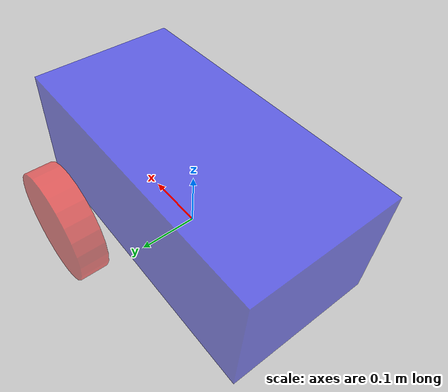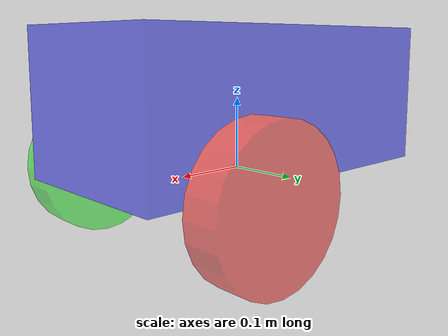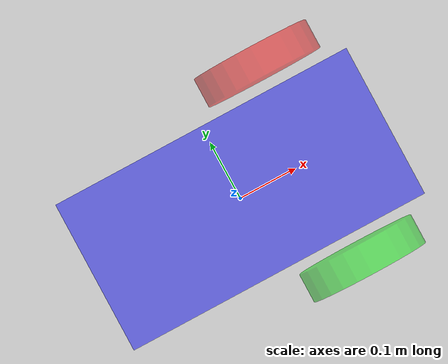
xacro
<?xml version="1.0"?>
<robot name="car_robot" xmlns:xacro="http://www.ros.org/wiki/xacro">

  <!-- Numerical Macros - units are meters and radians -->
  <xacro:property name="wheel_separation" value="0.350" />
  <xacro:property name="wheel_radius" value="0.100" />
  <xacro:property name="wheel_width"  value="0.050" />
  <xacro:property name="body_height"  value="0.200" />
  <xacro:property name="body_width"   value="0.250" />
  <xacro:property name="body_length"  value="0.500" />

   <link name="car_body">

    <visual>
      <origin xyz="0 0 ${0.5*body_height}" rpy="0 0 0" />
      <geometry>
        <box size="${body_length} ${body_width} ${body_height}" />
      </geometry>
      <material name="Blue">
      	<color rgba="0 0.0 1.0 0.5" />
      </material>
    </visual>

    <collision>
      <origin xyz="0 0 ${0.5*body_height}" rpy="0 0 0" />
      <geometry>
        <box size="${body_length} ${body_width} ${body_height}" />
      </geometry>
    </collision>

  <inertial>
    <origin xyz="0 0 ${0.5*body_height}" rpy="0 0 0"/>
    <mass value="0.180"/>
    <inertia ixx="6.0e-4" ixy="0" ixz="0" iyy="6.0e-4" iyz="0" izz="6.0e-4"/>
  </inertial>
   </link>

   <link name="wheelR">

    <visual>
      <origin xyz="0 0 0" rpy="1.57079 0 0" />
      <geometry>
        <cylinder length="${wheel_width}" radius="${wheel_radius}" />
      </geometry>
      <material name="Green">
      	<color rgba="0.0 1.0 0.0 0.5" />
      </material>
    </visual>

    <collision>
      <origin xyz="0 0 0" rpy="1.57079 0 0" />
      <geometry>
        <cylinder length="${wheel_width}" radius="${wheel_radius}" />
      </geometry>
    </collision>

  <inertial>
    <origin xyz="0 0 0" rpy="0 0 0"/>
    <mass value="0.030"/>
    <inertia ixx="1.75e-5" ixy="0" ixz="0" iyy="1.75e-5" iyz="0" izz="1.75e-5"/>
  </inertial>
   </link>

   <link name="wheelL">

    <visual>
      <origin xyz="0 0 0" rpy="1.57079 0 0" />
      <geometry>
        <cylinder length="${wheel_width}" radius="${wheel_radius}" />
      </geometry>
      <material name="Red">
      	<color rgba="1 0 0 0.5" />
      </material>
    </visual>

    <collision>
      <origin xyz="0 0 0" rpy="1.57079 0 0" />
      <geometry>
        <cylinder length="${wheel_width}" radius="${wheel_radius}" />
      </geometry>
    </collision>

  <inertial>
    <origin xyz="0 0 0" rpy="0 0 0"/>
    <mass value="0.030"/>
    <inertia ixx="1.75e-5" ixy="0" ixz="0" iyy="1.75e-5" iyz="0" izz="1.75e-5"/>
  </inertial>
   </link>

   <link name="suport">

    <visual>
      <origin xyz="0 0 ${-0.5 * wheel_radius}" rpy="0 0 0" />
      <geometry>
        <box size="${wheel_radius} ${wheel_radius} ${wheel_radius}" />
      </geometry>
      <material name="Blue">
      	<color rgba="0 0.0 1.0 0.5" />
      </material>
    </visual>

    <collision>
      <origin xyz="0 0 ${-0.5 * wheel_radius}" rpy="0 0 0" />
      <geometry>
        <box size="${wheel_radius} ${wheel_radius} ${wheel_radius}" />
      </geometry>
    </collision>

  <inertial>
    <origin xyz="0 0 ${wheel_radius}" rpy="0 0 0"/>
    <mass value="0.180"/>
    <inertia ixx="6.0e-4" ixy="0" ixz="0" iyy="6.0e-4" iyz="0" izz="6.0e-4"/>
  </inertial>
   </link>

   <!-- Joints -->
   <joint name="jointR" type="continuous">
    <parent link="car_body" />
    <child link="wheelR" />
    <origin xyz="${body_length * 0.25} ${-wheel_separation * 0.5} 0" rpy="0 0 0" />
    <axis xyz="0 1 0" />
    <dynamics friction="0.0"/>
   </joint>

   <joint name="jointL" type="continuous">
    <parent link="car_body" />
    <child link="wheelL" />
    <origin xyz="${body_length * 0.25} ${+wheel_separation * 0.5} 0" rpy="0 0 0" />
    <axis xyz="0 1 0" />
    <dynamics friction="0.0"/>
   </joint>

   <joint name="jointS" type="fixed">
    <parent link="car_body" />
    <child link="suport" />
    <origin xyz="${-body_length * 0.25} 0 0" rpy="0 0 0" />
    <axis xyz="0 1 0" />
    <dynamics friction="0.0"/>
   </joint>

 <gazebo reference="car_body">
   <material>Gazebo/Blue</material>
   <mu1>0.2</mu1>
   <mu2>0.2</mu2>
 </gazebo>
 <gazebo reference="wheelR">
   <material>Gazebo/Green</material>
   <mu1>0.2</mu1>
   <mu2>0.2</mu2>
 </gazebo>
 <gazebo reference="wheelL">
   <material>Gazebo/Red</material>
   <mu1>0.2</mu1>
   <mu2>0.2</mu2>
 </gazebo>
  <gazebo reference="support">
   <material>Gazebo/Blue</material>
   <mu1>0</mu1>
   <mu2>0</mu2>
 </gazebo>

</robot>
